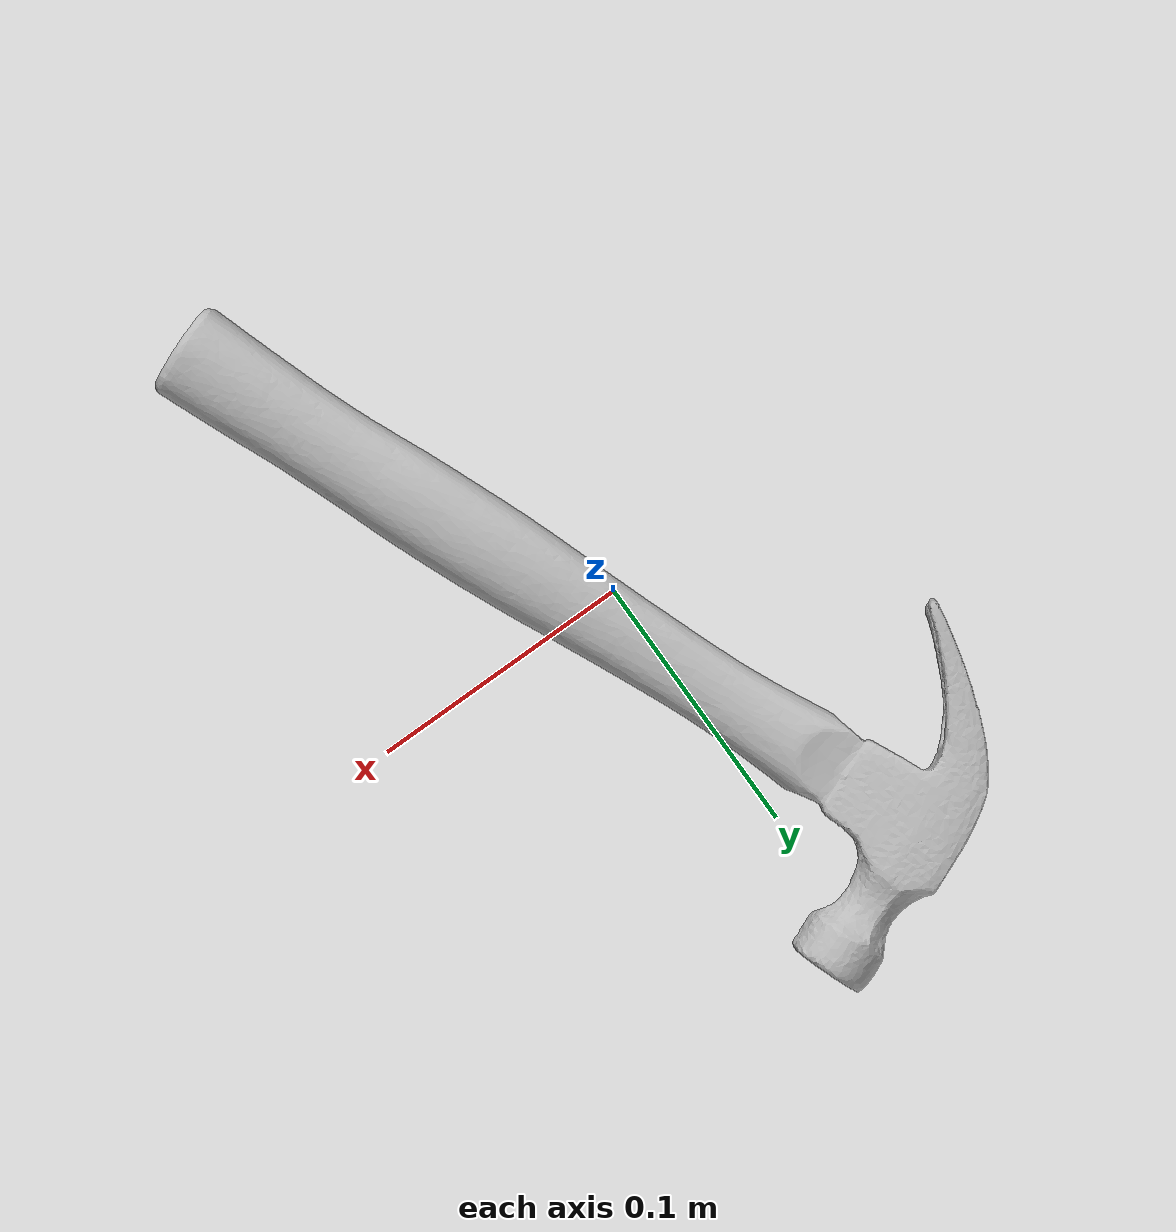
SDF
<?xml version="1.0" ?>
<sdf version='1.8'>
  <model name='ycb_048_hammer'>
    <link name='body'>
      <inertial>
        <mass>0.665</mass>
        <pose>0.00926713909 0.0103213269 0.016330484 0 0 0</pose>
        <inertia>
          <ixx>0.00677554606091</ixx>
          <ixy>0.00246302094545</ixy>
          <ixz>1.77680673672e-05</ixz>
          <iyy>0.00118745721689</iyy>
          <iyz>-3.22329793884e-05</iyz>
          <izz>0.00790388516218</izz>
        </inertia>
      </inertial>
      <visual name='ycb_048_hammer_visual'>
        <pose>0.037838 0.022994 0.000677 0 0 0</pose>
        <geometry>
          <mesh>
            <uri>model://ycb_048_hammer/meshes/textured.dae</uri>
          </mesh>
        </geometry>
      </visual>
      <collision name='ycb_048_hammer_collision'>
        <pose>0.037838 0.022994 0.000677 0 0 0</pose>
        <geometry>
          <mesh>
            <uri>model://ycb_048_hammer/meshes/nontextured.stl</uri>
          </mesh>
        </geometry>
        <max_contacts>10</max_contacts>
        <surface>
          <contact>
            <ode>
              <kp>1e15</kp>
              <kd>1e13</kd>
            </ode>
          </contact>
        </surface>
      </collision>
    </link>
  </model>
</sdf>
